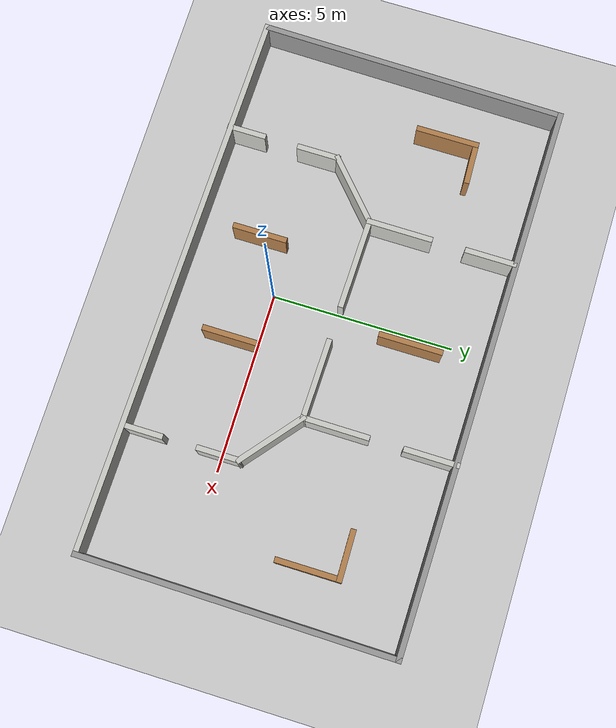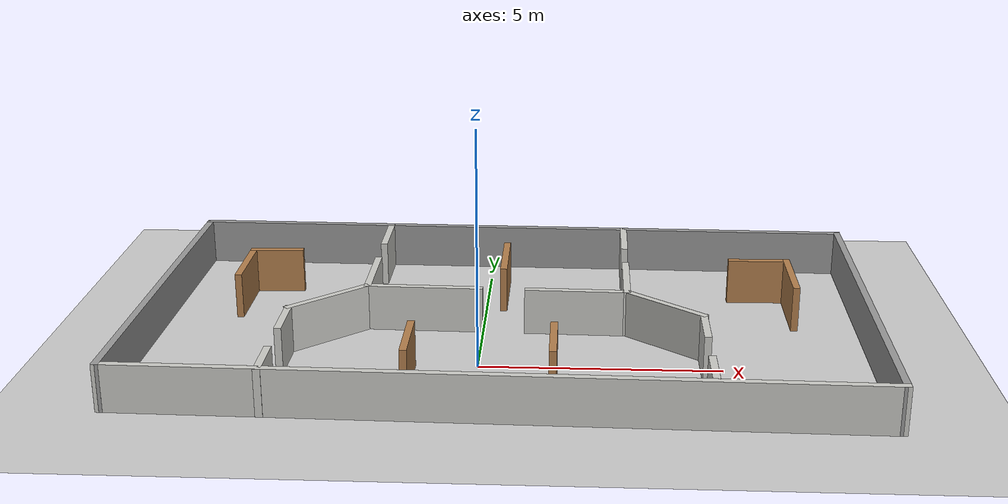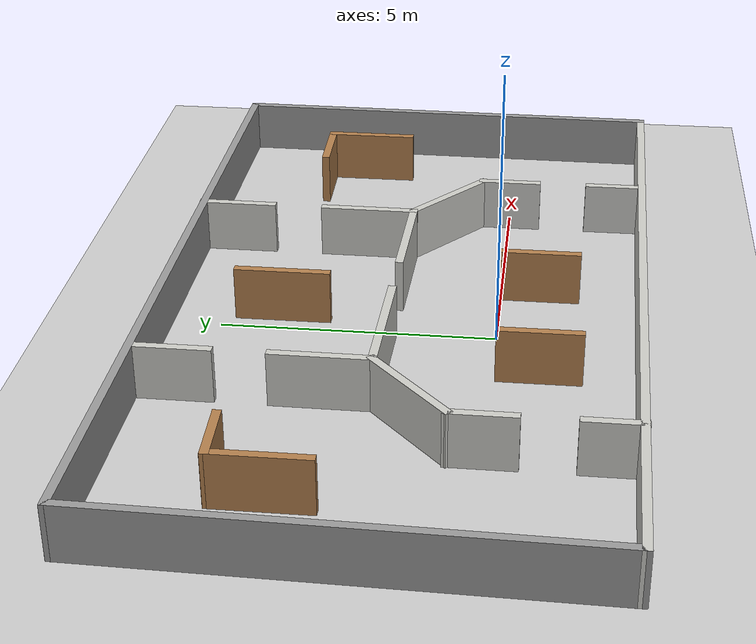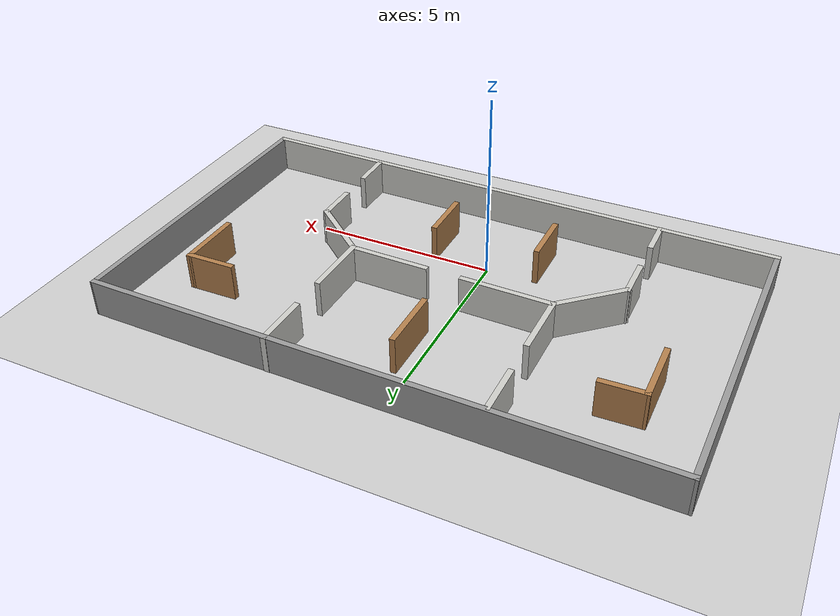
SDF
<sdf version="1.7">
 <world name="default">
  <light name="sun" type="directional">
   <pose>0 0 10 0 -0 0</pose>
   <diffuse>0.8 0.8 0.8 1</diffuse>
   <specular>0.2 0.2 0.2 1</specular>
   <attenuation>
    <range>1000</range>
    <constant>0.9</constant>
    <linear>0.01</linear>
    <quadratic>0.001</quadratic>
   </attenuation>
   <direction>-0.5 0.1 -0.9</direction>
   <spot><inner_angle>0</inner_angle><outer_angle>0</outer_angle><falloff>0</falloff></spot>
  </light>
  <model name="ground_plane">
   <static>1</static>
   <link name="link">
    <collision name="collision">
     <geometry><plane><normal>0 0 1</normal><size>100 100</size></plane></geometry>
     <surface>
      <contact><collide_bitmask>65535</collide_bitmask></contact>
      <friction><ode><mu>100</mu><mu2>50</mu2></ode></friction>
     </surface>
    </collision>
    <visual name="visual">
     <cast_shadows>0</cast_shadows>
     <geometry><plane><normal>0 0 1</normal><size>100 100</size></plane></geometry>
     <material>
      <script><uri>file://media/materials/scripts/gazebo.material</uri><name>Gazebo/Grey</name></script>
     </material>
    </visual>
   </link>
  </model>
  <gravity>0 0 -9.8</gravity>
  <magnetic_field>6e-06 2.3e-05 -4.2e-05</magnetic_field>
  <atmosphere type="adiabatic"/>
  <physics type="ode">
   <max_step_size>0.001</max_step_size>
   <real_time_factor>1</real_time_factor>
   <real_time_update_rate>1000</real_time_update_rate>
  </physics>
  <scene><ambient>0.4 0.4 0.4 1</ambient><background>0.7 0.7 0.7 1</background><shadows>1</shadows></scene>
  <spherical_coordinates>
   <surface_model>EARTH_WGS84</surface_model>
   <latitude_deg>0</latitude_deg>
   <longitude_deg>0</longitude_deg>
   <elevation>0</elevation>
   <heading_deg>0</heading_deg>
  </spherical_coordinates>
  <model name="m2">
   <pose>0.534024 1.68798 0 0 -0 0</pose>
   <link name="Wall_0">
    <collision name="Wall_0_Collision">
     <geometry><box><size>15.3022 0.15 1</size></box></geometry>
     <pose>0 0 0.5 0 -0 0</pose>
    </collision>
    <visual name="Wall_0_Visual">
     <pose>0 0 0.5 0 -0 0</pose>
     <geometry><box><size>15.3022 0.15 1</size></box></geometry>
     <material>
      <script><uri>file://media/materials/scripts/gazebo.material</uri><name>Gazebo/CeilingTiled</name></script>
      <ambient>0.180392 0.203922 0.211765 1</ambient>
     </material>
     <meta><layer>0</layer></meta>
    </visual>
    <pose>-0.044283 -4.22507 0 0 -0 -0.01716</pose>
   </link>
   <link name="Wall_1">
    <collision name="Wall_1_Collision">
     <geometry><box><size>8.67935 0.15 1</size></box></geometry>
     <pose>0 0 0.5 0 -0 0</pose>
    </collision>
    <visual name="Wall_1_Visual">
     <pose>0 0 0.5 0 -0 0</pose>
     <geometry><box><size>8.67935 0.15 1</size></box></geometry>
     <material>
      <script><uri>file://media/materials/scripts/gazebo.material</uri><name>Gazebo/Grey</name></script>
      <ambient>0.180392 0.203922 0.211765 1</ambient>
     </material>
     <meta><layer>0</layer></meta>
    </visual>
    <pose>7.57522 -0.090566 0 0 -0 1.56036</pose>
   </link>
   <link name="Wall_10">
    <collision name="Wall_10_Collision">
     <geometry><box><size>2.12763 0.15 1</size></box></geometry>
     <pose>0 0 0.5 0 -0 0</pose>
    </collision>
    <visual name="Wall_10_Visual">
     <pose>0 0 0.5 0 -0 0</pose>
     <geometry><box><size>2.12763 0.15 1</size></box></geometry>
     <material>
      <script><uri>file://media/materials/scripts/gazebo.material</uri><name>Gazebo/CeilingTiled</name></script>
      <ambient>0.756863 0.490196 0.0666667 1</ambient>
     </material>
     <meta><layer>0</layer></meta>
    </visual>
    <pose>3.30422 -0.512566 0 0 -0 -0.685089</pose>
   </link>
   <link name="Wall_11">
    <pose>4.06972 -2.66807 0 0 -0 -1.5708</pose>
    <visual name="Wall_11_Visual_0">
     <pose>-0.99366 0 0.5 0 -0 0</pose>
     <geometry><box><size>1.22281 0.15 1</size></box></geometry>
     <material>
      <script><uri>file://media/materials/scripts/gazebo.material</uri><name>Gazebo/CeilingTiled</name></script>
      <ambient>0.756863 0.490196 0.0666667 1</ambient>
     </material>
     <meta><layer>0</layer></meta>
    </visual>
    <collision name="Wall_11_Collision_0">
     <geometry><box><size>1.22281 0.15 1</size></box></geometry>
     <pose>-0.99366 0 0.5 0 -0 0</pose>
    </collision>
    <visual name="Wall_11_Visual_1">
     <pose>1.0614 0 0.5 0 -0 0</pose>
     <geometry><box><size>1.08732 0.15 1</size></box></geometry>
     <material>
      <script><uri>file://media/materials/scripts/gazebo.material</uri><name>Gazebo/CeilingTiled</name></script>
      <ambient>0.756863 0.490196 0.0666667 1</ambient>
     </material>
     <meta><layer>0</layer></meta>
    </visual>
    <collision name="Wall_11_Collision_1">
     <geometry><box><size>1.08732 0.15 1</size></box></geometry>
     <pose>1.0614 0 0.5 0 -0 0</pose>
    </collision>
   </link>
   <link name="Wall_13">
    <collision name="Wall_13_Collision">
     <geometry><box><size>2.13524 0.15 1</size></box></geometry>
     <pose>0 0 0.5 0 -0 0</pose>
    </collision>
    <visual name="Wall_13_Visual">
     <pose>0 0 0.5 0 -0 0</pose>
     <geometry><box><size>2.13524 0.15 1</size></box></geometry>
     <material>
      <script><uri>file://media/materials/scripts/gazebo.material</uri><name>Gazebo/CeilingTiled</name></script>
      <ambient>0.756863 0.490196 0.0666667 1</ambient>
     </material>
     <meta><layer>0</layer></meta>
    </visual>
    <pose>-3.77628 -0.434566 0 0 -0 -2.40429</pose>
   </link>
   <link name="Wall_18">
    <pose>-4.51628 -2.62957 0 0 -0 1.56752</pose>
    <visual name="Wall_18_Visual_0">
     <pose>-1.06039 0 0.5 0 -0 0</pose>
     <geometry><box><size>1.08436 0.15 1</size></box></geometry>
     <material>
      <script><uri>file://media/materials/scripts/gazebo.material</uri><name>Gazebo/CeilingTiled</name></script>
      <ambient>0.756863 0.490196 0.0666667 1</ambient>
     </material>
     <meta><layer>0</layer></meta>
    </visual>
    <collision name="Wall_18_Collision_0">
     <geometry><box><size>1.08436 0.15 1</size></box></geometry>
     <pose>-1.06039 0 0.5 0 -0 0</pose>
    </collision>
    <visual name="Wall_18_Visual_1">
     <pose>0.992182 0 0.5 0 -0 0</pose>
     <geometry><box><size>1.22077 0.15 1</size></box></geometry>
     <material>
      <script><uri>file://media/materials/scripts/gazebo.material</uri><name>Gazebo/CeilingTiled</name></script>
      <ambient>0.756863 0.490196 0.0666667 1</ambient>
     </material>
     <meta><layer>0</layer></meta>
    </visual>
    <collision name="Wall_18_Collision_1">
     <geometry><box><size>1.22077 0.15 1</size></box></geometry>
     <pose>0.992182 0 0.5 0 -0 0</pose>
    </collision>
   </link>
   <link name="Wall_2">
    <collision name="Wall_2_Collision">
     <geometry><box><size>15.2302 0.15 1</size></box></geometry>
     <pose>0 0 0.5 0 -0 0</pose>
    </collision>
    <visual name="Wall_2_Visual">
     <pose>0 0 0.5 0 -0 0</pose>
     <geometry><box><size>15.2302 0.15 1</size></box></geometry>
     <material>
      <script><uri>file://media/materials/scripts/gazebo.material</uri><name>Gazebo/Grey</name></script>
      <ambient>0.180392 0.203922 0.211765 1</ambient>
     </material>
     <meta><layer>0</layer></meta>
    </visual>
    <pose>0.080217 4.26443 0 0 -0 3.12959</pose>
   </link>
   <link name="Wall_20">
    <collision name="Wall_20_Collision">
     <geometry><box><size>1.5 0.15 1</size></box></geometry>
     <pose>0 0 0.5 0 -0 0</pose>
    </collision>
    <visual name="Wall_20_Visual">
     <pose>0 0 0.5 0 -0 0</pose>
     <geometry><box><size>1.5 0.15 1</size></box></geometry>
     <material>
      <script><uri>file://media/materials/scripts/gazebo.material</uri><name>Gazebo/Wood</name></script>
      <ambient>0.960784 0.47451 0 1</ambient>
     </material>
     <meta><layer>0</layer></meta>
    </visual>
    <pose>-1.88128 -2.47207 0 0 -0 -1.5708</pose>
   </link>
   <link name="Wall_22">
    <collision name="Wall_22_Collision">
     <geometry><box><size>1.5 0.15 1</size></box></geometry>
     <pose>0 0 0.5 0 -0 0</pose>
    </collision>
    <visual name="Wall_22_Visual">
     <pose>0 0 0.5 0 -0 0</pose>
     <geometry><box><size>1.5 0.15 1</size></box></geometry>
     <material>
      <script><uri>file://media/materials/scripts/gazebo.material</uri><name>Gazebo/Wood</name></script>
      <ambient>0.960784 0.47451 0 1</ambient>
     </material>
     <meta><layer>0</layer></meta>
    </visual>
    <pose>1.01872 -2.38207 0 0 -0 -1.5708</pose>
   </link>
   <link name="Wall_24">
    <collision name="Wall_24_Collision">
     <geometry><box><size>1.75 0.15 1</size></box></geometry>
     <pose>0 0 0.5 0 -0 0</pose>
    </collision>
    <visual name="Wall_24_Visual">
     <pose>0 0 0.5 0 -0 0</pose>
     <geometry><box><size>1.75 0.15 1</size></box></geometry>
     <material>
      <script><uri>file://media/materials/scripts/gazebo.material</uri><name>Gazebo/Wood</name></script>
      <ambient>0.960784 0.47451 0 1</ambient>
     </material>
     <meta><layer>0</layer></meta>
    </visual>
    <pose>-0.161283 2.22293 0 0 -0 -1.5708</pose>
   </link>
   <link name="Wall_26">
    <collision name="Wall_26_Collision">
     <geometry><box><size>1.21 0.15 1</size></box></geometry>
     <pose>0 0 0.5 0 -0 0</pose>
    </collision>
    <visual name="Wall_26_Visual">
     <pose>0 0 0.5 0 -0 0</pose>
     <geometry><box><size>1.21 0.15 1</size></box></geometry>
     <material>
      <script><uri>file://media/materials/scripts/gazebo.material</uri><name>Gazebo/Wood</name></script>
      <ambient>0.960784 0.47451 0 1</ambient>
     </material>
     <meta><layer>0</layer></meta>
    </visual>
    <pose>-5.44128 2.40293 0 0 -0 -3.10387</pose>
   </link>
   <link name="Wall_27">
    <collision name="Wall_27_Collision">
     <geometry><box><size>1.75 0.15 1</size></box></geometry>
     <pose>0 0 0.5 0 -0 0</pose>
    </collision>
    <visual name="Wall_27_Visual">
     <pose>0 0 0.5 0 -0 0</pose>
     <geometry><box><size>1.75 0.15 1</size></box></geometry>
     <material>
      <script><uri>file://media/materials/scripts/gazebo.material</uri><name>Gazebo/Wood</name></script>
      <ambient>0.996078 0.47451 0.0196078 1</ambient>
     </material>
     <meta><layer>0</layer></meta>
    </visual>
    <pose>-5.97128 1.58293 0 0 -0 -1.5708</pose>
   </link>
   <link name="Wall_29">
    <collision name="Wall_29_Collision">
     <geometry><box><size>1.38065 0.15 1</size></box></geometry>
     <pose>0 0 0.5 0 -0 0</pose>
    </collision>
    <visual name="Wall_29_Visual">
     <pose>0 0 0.5 0 -0 0</pose>
     <geometry><box><size>1.38065 0.15 1</size></box></geometry>
     <material>
      <script><uri>file://media/materials/scripts/gazebo.material</uri><name>Gazebo/Wood</name></script>
      <ambient>0.960784 0.47451 0 1</ambient>
     </material>
     <meta><layer>0</layer></meta>
    </visual>
    <pose>5.56372 2.19293 0 0 -0 0.016259</pose>
   </link>
   <link name="Wall_30">
    <collision name="Wall_30_Collision">
     <geometry><box><size>1.78976 0.15 1</size></box></geometry>
     <pose>0 0 0.5 0 -0 0</pose>
    </collision>
    <visual name="Wall_30_Visual">
     <pose>0 0 0.5 0 -0 0</pose>
     <geometry><box><size>1.78976 0.15 1</size></box></geometry>
     <material>
      <script><uri>file://media/materials/scripts/gazebo.material</uri><name>Gazebo/Wood</name></script>
      <ambient>0.960784 0.47451 0 1</ambient>
     </material>
     <meta><layer>0</layer></meta>
    </visual>
    <pose>6.17872 1.38293 0 0 -0 -1.5708</pose>
   </link>
   <link name="Wall_4">
    <collision name="Wall_4_Collision">
     <geometry><box><size>8.60151 0.15 1</size></box></geometry>
     <pose>0 0 0.5 0 -0 0</pose>
    </collision>
    <visual name="Wall_4_Visual">
     <pose>0 0 0.5 0 -0 0</pose>
     <geometry><box><size>8.60151 0.15 1</size></box></geometry>
     <material>
      <script><uri>file://media/materials/scripts/gazebo.material</uri><name>Gazebo/Grey</name></script>
      <ambient>0.180392 0.203922 0.211765 1</ambient>
     </material>
     <meta><layer>0</layer></meta>
    </visual>
    <pose>-7.53928 0.129934 0 0 -0 -1.58973</pose>
   </link>
   <link name="Wall_6">
    <pose>-3.03128 2.23793 0 0 -0 -1.57578</pose>
    <visual name="Wall_6_Visual_0">
     <pose>-1.36769 0 0.5 0 -0 0</pose>
     <geometry><box><size>1.42468 0.15 1</size></box></geometry>
     <material>
      <script><uri>file://media/materials/scripts/gazebo.material</uri><name>Gazebo/CeilingTiled</name></script>
      <ambient>0.756863 0.490196 0.0666667 1</ambient>
     </material>
     <meta><layer>0</layer></meta>
    </visual>
    <collision name="Wall_6_Collision_0">
     <geometry><box><size>1.42468 0.15 1</size></box></geometry>
     <pose>-1.36769 0 0.5 0 -0 0</pose>
    </collision>
    <visual name="Wall_6_Visual_1">
     <pose>1.16234 0 0.5 0 -0 0</pose>
     <geometry><box><size>1.83537 0.15 1</size></box></geometry>
     <material>
      <script><uri>file://media/materials/scripts/gazebo.material</uri><name>Gazebo/CeilingTiled</name></script>
      <ambient>0.756863 0.490196 0.0666667 1</ambient>
     </material>
     <meta><layer>0</layer></meta>
    </visual>
    <collision name="Wall_6_Collision_1">
     <geometry><box><size>1.83537 0.15 1</size></box></geometry>
     <pose>1.16234 0 0.5 0 -0 0</pose>
    </collision>
   </link>
   <link name="Wall_7">
    <pose>-0.251283 0.172934 0 0 -0 -0.021502</pose>
    <visual name="Wall_7_Visual_0">
     <pose>-1.58257 0 0.5 0 -0 0</pose>
     <geometry><box><size>2.56658 0.15 1</size></box></geometry>
     <material>
      <script><uri>file://media/materials/scripts/gazebo.material</uri><name>Gazebo/CeilingTiled</name></script>
      <ambient>0.756863 0.490196 0.0666667 1</ambient>
     </material>
     <meta><layer>0</layer></meta>
    </visual>
    <collision name="Wall_7_Collision_0">
     <geometry><box><size>2.56658 0.15 1</size></box></geometry>
     <pose>-1.58257 0 0.5 0 -0 0</pose>
    </collision>
    <visual name="Wall_7_Visual_1">
     <pose>1.73329 0 0.5 0 -0 0</pose>
     <geometry><box><size>2.26514 0.15 1</size></box></geometry>
     <material>
      <script><uri>file://media/materials/scripts/gazebo.material</uri><name>Gazebo/CeilingTiled</name></script>
      <ambient>0.756863 0.490196 0.0666667 1</ambient>
     </material>
     <meta><layer>0</layer></meta>
    </visual>
    <collision name="Wall_7_Collision_1">
     <geometry><box><size>2.26514 0.15 1</size></box></geometry>
     <pose>1.73329 0 0.5 0 -0 0</pose>
    </collision>
   </link>
   <link name="Wall_8">
    <pose>2.54872 2.17793 0 0 -0 1.56595</pose>
    <visual name="Wall_8_Visual_0">
     <pose>-1.20302 0 0.5 0 -0 0</pose>
     <geometry><box><size>1.874 0.15 1</size></box></geometry>
     <material>
      <script><uri>file://media/materials/scripts/gazebo.material</uri><name>Gazebo/CeilingTiled</name></script>
      <ambient>0.756863 0.490196 0.0666667 1</ambient>
     </material>
     <meta><layer>0</layer></meta>
    </visual>
    <collision name="Wall_8_Collision_0">
     <geometry><box><size>1.874 0.15 1</size></box></geometry>
     <pose>-1.20302 0 0.5 0 -0 0</pose>
    </collision>
    <visual name="Wall_8_Visual_1">
     <pose>1.387 0 0.5 0 -0 0</pose>
     <geometry><box><size>1.50604 0.15 1</size></box></geometry>
     <material>
      <script><uri>file://media/materials/scripts/gazebo.material</uri><name>Gazebo/CeilingTiled</name></script>
      <ambient>0.756863 0.490196 0.0666667 1</ambient>
     </material>
     <meta><layer>0</layer></meta>
    </visual>
    <collision name="Wall_8_Collision_1">
     <geometry><box><size>1.50604 0.15 1</size></box></geometry>
     <pose>1.387 0 0.5 0 -0 0</pose>
    </collision>
   </link>
   <static>1</static>
  </model>
 </world>
</sdf>
